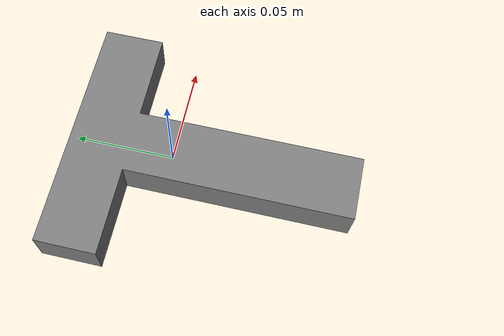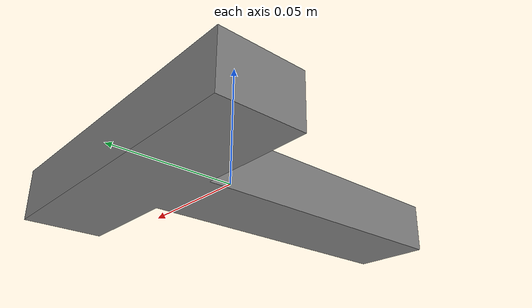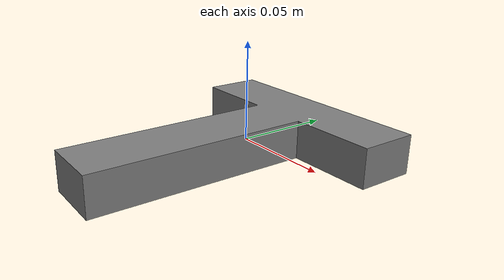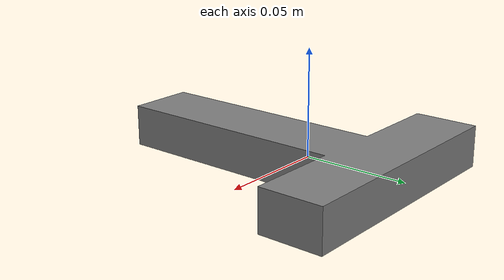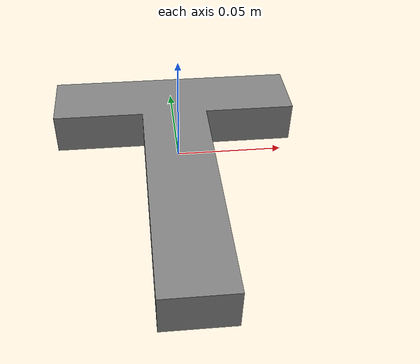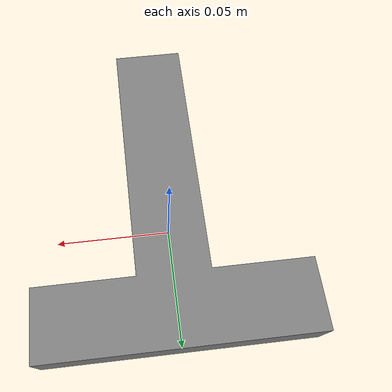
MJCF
<mujoco model="letter_t">
  <compiler angle="radian" />

  <asset>
    <mesh name="letter_t_visual_mesh" file="letter_t/textured.obj" />
    <mesh name="letter_t_collision_mesh_0" file="letter_t/textured_coacd_0.stl" />
    <mesh name="letter_t_collision_mesh_1" file="letter_t/textured_coacd_1.stl" />
  </asset>

  <worldbody>
    <body name="letter_t" pos="0 0 0" euler="0 0 0">
      <freejoint name="letter_t_joint" />
      <geom name="letter_t_visual_geom" type="mesh" mesh="letter_t_visual_mesh" pos="0.0 -0.00016586781843713064 0.0" euler="0 0 0" contype="0" conaffinity="0" group="0" />
      <geom name="letter_t_collision_geom_0" type="mesh" mesh="letter_t_collision_mesh_0" pos="0.0 -0.00016586781843713064 0.0" euler="0 0 0" contype="1" conaffinity="1" group="3" />
      <geom name="letter_t_collision_geom_1" type="mesh" mesh="letter_t_collision_mesh_1" pos="0.0 -0.00016586781843713064 0.0" euler="0 0 0" contype="1" conaffinity="1" group="3" />
      <inertial pos="0 0 0" euler="0 0 0" mass="0.1" diaginertia="0.001 0.001 0.001" />
    </body>
  </worldbody>
</mujoco>
